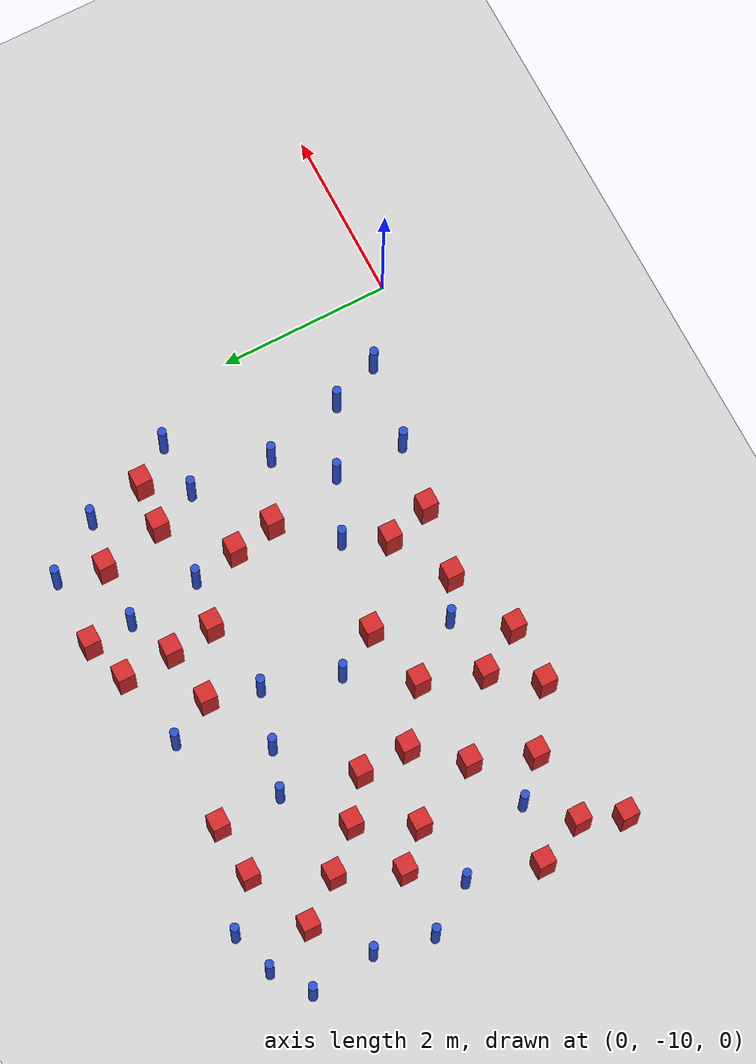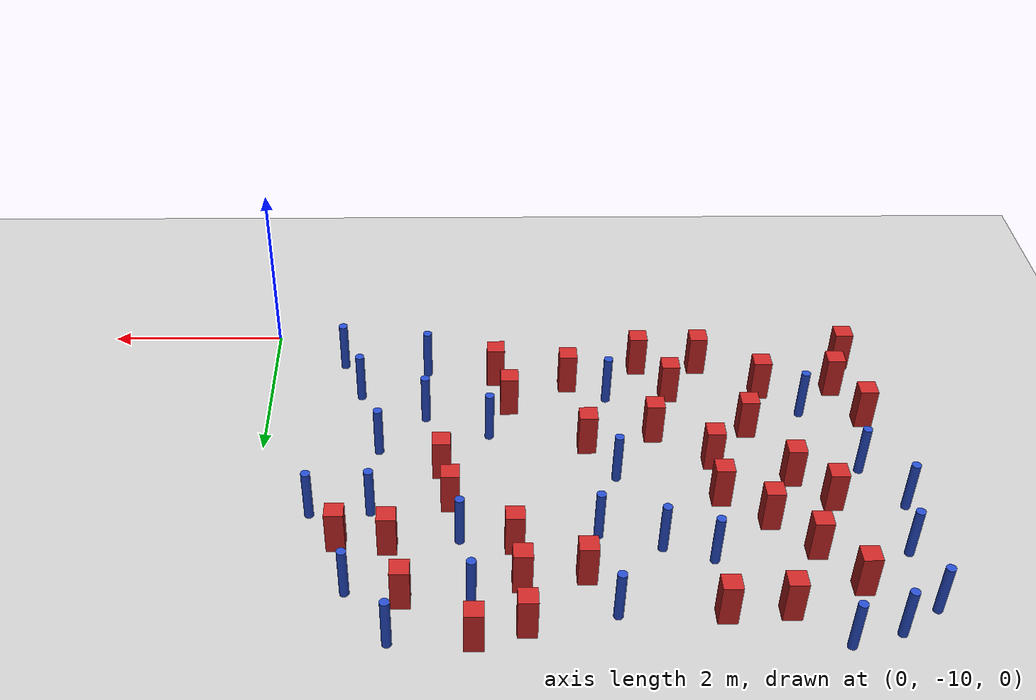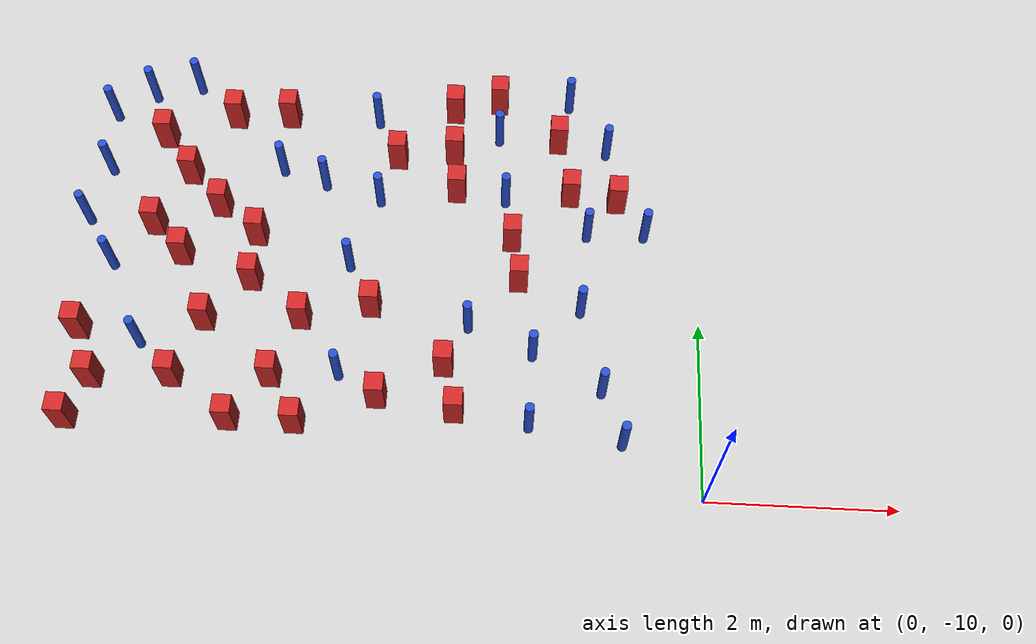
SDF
<sdf version="1.6">
 <world name="default">
  <model name="ground_plane">
   <static>1</static>
   <link name="link">
    <collision name="collision">
     <geometry><plane><normal>0 0 1</normal><size>100 100</size></plane></geometry>
     <surface><friction><ode><mu>100</mu><mu2>50</mu2></ode></friction></surface>
    </collision>
    <visual name="visual">
     <cast_shadows>0</cast_shadows>
     <geometry><plane><normal>0 0 1</normal><size>100 100</size></plane></geometry>
     <material>
      <ambient>1.0 1.0 1.0 1.0</ambient>
      <diffuse>0.8 0.8 0.8 1.0</diffuse>
      <specular>0.01 0.01 0.01 1.000000</specular>
     </material>
    </visual>
   </link>
  </model>
  <model name="pole_obstacle16">
   <static>true</static>
   <pose>-6.89624991938 -7.01245706391 2.88873142074e-08 -9.90536690842e-09 4.60219948965e-07 -1.20965994976e-07</pose>
   <link name="link">
    <pose>0 0 0.3 0 -0 0</pose>
    <inertial>
     <mass>1</mass>
     <inertia><ixx>0.145833</ixx><ixy>0</ixy><ixz>0</ixz><iyy>0.145833</iyy><iyz>0</iyz><izz>0.125</izz></inertia>
    </inertial>
    <collision name="collision">
     <geometry><cylinder><radius>0.05</radius><length>.6</length></cylinder></geometry>
    </collision>
    <visual name="visual">
     <geometry><cylinder><radius>0.05</radius><length>.6</length></cylinder></geometry>
     <material>
      <script><name>Gazebo/Blue</name><uri>file://media/materials/scripts/gazebo.material</uri></script>
     </material>
    </visual>
   </link>
  </model>
  <model name="square_post_obstacle25">
   <static>true</static>
   <pose>-5.38854171255 -8.22522433541 8.22691968438e-08 7.2212513382e-06 -7.54495500217e-07 2.29674213826e-05</pose>
   <link name="link">
    <pose>0 0 0.25 0 -0 0</pose>
    <inertial>
     <mass>100</mass>
     <inertia>
      <ixx>0.166667</ixx>
      <ixy>0</ixy>
      <ixz>0</ixz>
      <iyy>0.166667</iyy>
      <iyz>0</iyz>
      <izz>0.166667</izz>
     </inertia>
    </inertial>
    <collision name="collision"><geometry><box><size>.2 .2 .5</size></box></geometry></collision>
    <visual name="visual">
     <geometry><box><size>.2 .2 .5</size></box></geometry>
     <material>
      <script><name>Gazebo/Red</name><uri>file://media/materials/scripts/gazebo.material</uri></script>
     </material>
    </visual>
   </link>
  </model>
  <model name="square_post_obstacle26">
   <static>true</static>
   <pose>-2.73915093022 -6.44929739623 8.22691968438e-08 7.2212513382e-06 -7.54495500217e-07 2.29674213826e-05</pose>
   <link name="link">
    <pose>0 0 0.25 0 -0 0</pose>
    <inertial>
     <mass>100</mass>
     <inertia>
      <ixx>0.166667</ixx>
      <ixy>0</ixy>
      <ixz>0</ixz>
      <iyy>0.166667</iyy>
      <iyz>0</iyz>
      <izz>0.166667</izz>
     </inertia>
    </inertial>
    <collision name="collision"><geometry><box><size>.2 .2 .5</size></box></geometry></collision>
    <visual name="visual">
     <geometry><box><size>.2 .2 .5</size></box></geometry>
     <material>
      <script><name>Gazebo/Red</name><uri>file://media/materials/scripts/gazebo.material</uri></script>
     </material>
    </visual>
   </link>
  </model>
  <model name="square_post_obstacle30">
   <static>true</static>
   <pose>-5.81576217852 -6.35316441127 8.22691968438e-08 7.2212513382e-06 -7.54495500217e-07 2.29674213826e-05</pose>
   <link name="link">
    <pose>0 0 0.25 0 -0 0</pose>
    <inertial>
     <mass>100</mass>
     <inertia>
      <ixx>0.166667</ixx>
      <ixy>0</ixy>
      <ixz>0</ixz>
      <iyy>0.166667</iyy>
      <iyz>0</iyz>
      <izz>0.166667</izz>
     </inertia>
    </inertial>
    <collision name="collision"><geometry><box><size>.2 .2 .5</size></box></geometry></collision>
    <visual name="visual">
     <geometry><box><size>.2 .2 .5</size></box></geometry>
     <material>
      <script><name>Gazebo/Red</name><uri>file://media/materials/scripts/gazebo.material</uri></script>
     </material>
    </visual>
   </link>
  </model>
  <model name="pole_obstacle26">
   <static>true</static>
   <pose>-1.29544428824 -7.91974382998 2.88873142074e-08 -9.90536689852e-09 4.60219948989e-07 -1.2096599496e-07</pose>
   <link name="link">
    <pose>0 0 0.3 0 -0 0</pose>
    <inertial>
     <mass>1</mass>
     <inertia><ixx>0.145833</ixx><ixy>0</ixy><ixz>0</ixz><iyy>0.145833</iyy><iyz>0</iyz><izz>0.125</izz></inertia>
    </inertial>
    <collision name="collision">
     <geometry><cylinder><radius>0.05</radius><length>.6</length></cylinder></geometry>
    </collision>
    <visual name="visual">
     <geometry><cylinder><radius>0.05</radius><length>.6</length></cylinder></geometry>
     <material>
      <script><name>Gazebo/Blue</name><uri>file://media/materials/scripts/gazebo.material</uri></script>
     </material>
    </visual>
   </link>
  </model>
  <model name="pole_obstacle27">
   <static>true</static>
   <pose>-1.24151862394 -6.95522540877 2.88873142074e-08 -9.90536689852e-09 4.60219948989e-07 -1.2096599496e-07</pose>
   <link name="link">
    <pose>0 0 0.3 0 -0 0</pose>
    <inertial>
     <mass>1</mass>
     <inertia><ixx>0.145833</ixx><ixy>0</ixy><ixz>0</ixz><iyy>0.145833</iyy><iyz>0</iyz><izz>0.125</izz></inertia>
    </inertial>
    <collision name="collision">
     <geometry><cylinder><radius>0.05</radius><length>.6</length></cylinder></geometry>
    </collision>
    <visual name="visual">
     <geometry><cylinder><radius>0.05</radius><length>.6</length></cylinder></geometry>
     <material>
      <script><name>Gazebo/Blue</name><uri>file://media/materials/scripts/gazebo.material</uri></script>
     </material>
    </visual>
   </link>
  </model>
  <model name="pole_obstacle35">
   <static>true</static>
   <pose>-5.91298071037 -5.12505855681 2.88873142074e-08 -9.90536690842e-09 4.60219948965e-07 -1.20965994976e-07</pose>
   <link name="link">
    <pose>0 0 0.3 0 -0 0</pose>
    <inertial>
     <mass>1</mass>
     <inertia><ixx>0.145833</ixx><ixy>0</ixy><ixz>0</ixz><iyy>0.145833</iyy><iyz>0</iyz><izz>0.125</izz></inertia>
    </inertial>
    <collision name="collision">
     <geometry><cylinder><radius>0.05</radius><length>.6</length></cylinder></geometry>
    </collision>
    <visual name="visual">
     <geometry><cylinder><radius>0.05</radius><length>.6</length></cylinder></geometry>
     <material>
      <script><name>Gazebo/Blue</name><uri>file://media/materials/scripts/gazebo.material</uri></script>
     </material>
    </visual>
   </link>
  </model>
  <model name="pole_obstacle36">
   <static>true</static>
   <pose>-3.87047037281 -8.80147134352 2.88873142074e-08 -9.9053668994e-09 4.60219948987e-07 -1.20965994963e-07</pose>
   <link name="link">
    <pose>0 0 0.3 0 -0 0</pose>
    <inertial>
     <mass>1</mass>
     <inertia><ixx>0.145833</ixx><ixy>0</ixy><ixz>0</ixz><iyy>0.145833</iyy><iyz>0</iyz><izz>0.125</izz></inertia>
    </inertial>
    <collision name="collision">
     <geometry><cylinder><radius>0.05</radius><length>.6</length></cylinder></geometry>
    </collision>
    <visual name="visual">
     <geometry><cylinder><radius>0.05</radius><length>.6</length></cylinder></geometry>
     <material>
      <script><name>Gazebo/Blue</name><uri>file://media/materials/scripts/gazebo.material</uri></script>
     </material>
    </visual>
   </link>
  </model>
  <model name="pole_obstacle39">
   <static>true</static>
   <pose>-6.43101364666 -5.27138680431 2.88873142074e-08 -9.90536690842e-09 4.60219948965e-07 -1.20965994976e-07</pose>
   <link name="link">
    <pose>0 0 0.3 0 -0 0</pose>
    <inertial>
     <mass>1</mass>
     <inertia><ixx>0.145833</ixx><ixy>0</ixy><ixz>0</ixz><iyy>0.145833</iyy><iyz>0</iyz><izz>0.125</izz></inertia>
    </inertial>
    <collision name="collision">
     <geometry><cylinder><radius>0.05</radius><length>.6</length></cylinder></geometry>
    </collision>
    <visual name="visual">
     <geometry><cylinder><radius>0.05</radius><length>.6</length></cylinder></geometry>
     <material>
      <script><name>Gazebo/Blue</name><uri>file://media/materials/scripts/gazebo.material</uri></script>
     </material>
    </visual>
   </link>
  </model>
  <model name="pole_obstacle42">
   <static>true</static>
   <pose>-1.81489456536 -9.29456355967 2.88873142074e-08 -9.90536690474e-09 4.60219948974e-07 -1.2096599497e-07</pose>
   <link name="link">
    <pose>0 0 0.3 0 -0 0</pose>
    <inertial>
     <mass>1</mass>
     <inertia><ixx>0.145833</ixx><ixy>0</ixy><ixz>0</ixz><iyy>0.145833</iyy><iyz>0</iyz><izz>0.125</izz></inertia>
    </inertial>
    <collision name="collision">
     <geometry><cylinder><radius>0.05</radius><length>.6</length></cylinder></geometry>
    </collision>
    <visual name="visual">
     <geometry><cylinder><radius>0.05</radius><length>.6</length></cylinder></geometry>
     <material>
      <script><name>Gazebo/Blue</name><uri>file://media/materials/scripts/gazebo.material</uri></script>
     </material>
    </visual>
   </link>
  </model>
  <model name="pole_obstacle43">
   <static>true</static>
   <pose>-3.71937577487 -5.51501637689 2.88873142074e-08 -9.90536689859e-09 4.60219948989e-07 -1.20965994961e-07</pose>
   <link name="link">
    <pose>0 0 0.3 0 -0 0</pose>
    <inertial>
     <mass>1</mass>
     <inertia><ixx>0.145833</ixx><ixy>0</ixy><ixz>0</ixz><iyy>0.145833</iyy><iyz>0</iyz><izz>0.125</izz></inertia>
    </inertial>
    <collision name="collision">
     <geometry><cylinder><radius>0.05</radius><length>.6</length></cylinder></geometry>
    </collision>
    <visual name="visual">
     <geometry><cylinder><radius>0.05</radius><length>.6</length></cylinder></geometry>
     <material>
      <script><name>Gazebo/Blue</name><uri>file://media/materials/scripts/gazebo.material</uri></script>
     </material>
    </visual>
   </link>
  </model>
  <model name="square_post_obstacle43">
   <static>true</static>
   <pose>-2.82227406231 -5.33965310086 8.22691968438e-08 7.2212513382e-06 -7.54495500217e-07 2.29674213826e-05</pose>
   <link name="link">
    <pose>0 0 0.25 0 -0 0</pose>
    <inertial>
     <mass>100</mass>
     <inertia>
      <ixx>0.166667</ixx>
      <ixy>0</ixy>
      <ixz>0</ixz>
      <iyy>0.166667</iyy>
      <iyz>0</iyz>
      <izz>0.166667</izz>
     </inertia>
    </inertial>
    <collision name="collision"><geometry><box><size>.2 .2 .5</size></box></geometry></collision>
    <visual name="visual">
     <geometry><box><size>.2 .2 .5</size></box></geometry>
     <material>
      <script><name>Gazebo/Red</name><uri>file://media/materials/scripts/gazebo.material</uri></script>
     </material>
    </visual>
   </link>
  </model>
  <model name="square_post_obstacle45">
   <static>true</static>
   <pose>-5.75638788323 -7.42453870226 8.22691968438e-08 7.22125133819e-06 -7.54495500217e-07 2.29674213826e-05</pose>
   <link name="link">
    <pose>0 0 0.25 0 -0 0</pose>
    <inertial>
     <mass>100</mass>
     <inertia>
      <ixx>0.166667</ixx>
      <ixy>0</ixy>
      <ixz>0</ixz>
      <iyy>0.166667</iyy>
      <iyz>0</iyz>
      <izz>0.166667</izz>
     </inertia>
    </inertial>
    <collision name="collision"><geometry><box><size>.2 .2 .5</size></box></geometry></collision>
    <visual name="visual">
     <geometry><box><size>.2 .2 .5</size></box></geometry>
     <material>
      <script><name>Gazebo/Red</name><uri>file://media/materials/scripts/gazebo.material</uri></script>
     </material>
    </visual>
   </link>
  </model>
  <model name="pole_obstacle48">
   <static>true</static>
   <pose>-3.61156983142 -6.60549499672 2.88873142074e-08 -9.90536689859e-09 4.60219948989e-07 -1.20965994961e-07</pose>
   <link name="link">
    <pose>0 0 0.3 0 -0 0</pose>
    <inertial>
     <mass>1</mass>
     <inertia><ixx>0.145833</ixx><ixy>0</ixy><ixz>0</ixz><iyy>0.145833</iyy><iyz>0</iyz><izz>0.125</izz></inertia>
    </inertial>
    <collision name="collision">
     <geometry><cylinder><radius>0.05</radius><length>.6</length></cylinder></geometry>
    </collision>
    <visual name="visual">
     <geometry><cylinder><radius>0.05</radius><length>.6</length></cylinder></geometry>
     <material>
      <script><name>Gazebo/Blue</name><uri>file://media/materials/scripts/gazebo.material</uri></script>
     </material>
    </visual>
   </link>
  </model>
  <model name="pole_obstacle50">
   <static>true</static>
   <pose>-6.52406111084 -7.57652183236 2.88873142074e-08 -9.90536690842e-09 4.60219948965e-07 -1.20965994976e-07</pose>
   <link name="link">
    <pose>0 0 0.3 0 -0 0</pose>
    <inertial>
     <mass>1</mass>
     <inertia><ixx>0.145833</ixx><ixy>0</ixy><ixz>0</ixz><iyy>0.145833</iyy><iyz>0</iyz><izz>0.125</izz></inertia>
    </inertial>
    <collision name="collision">
     <geometry><cylinder><radius>0.05</radius><length>.6</length></cylinder></geometry>
    </collision>
    <visual name="visual">
     <geometry><cylinder><radius>0.05</radius><length>.6</length></cylinder></geometry>
     <material>
      <script><name>Gazebo/Blue</name><uri>file://media/materials/scripts/gazebo.material</uri></script>
     </material>
    </visual>
   </link>
  </model>
  <model name="square_post_obstacle52">
   <static>true</static>
   <pose>-4.76873628464 -5.50413913749 8.22691968438e-08 7.22125133819e-06 -7.54495500217e-07 2.29674213826e-05</pose>
   <link name="link">
    <pose>0 0 0.25 0 -0 0</pose>
    <inertial>
     <mass>100</mass>
     <inertia>
      <ixx>0.166667</ixx>
      <ixy>0</ixy>
      <ixz>0</ixz>
      <iyy>0.166667</iyy>
      <iyz>0</iyz>
      <izz>0.166667</izz>
     </inertia>
    </inertial>
    <collision name="collision"><geometry><box><size>.2 .2 .5</size></box></geometry></collision>
    <visual name="visual">
     <geometry><box><size>.2 .2 .5</size></box></geometry>
     <material>
      <script><name>Gazebo/Red</name><uri>file://media/materials/scripts/gazebo.material</uri></script>
     </material>
    </visual>
   </link>
  </model>
  <model name="square_post_obstacle54">
   <static>true</static>
   <pose>-2.30677509787 -5.1812894545 8.22691968438e-08 7.2212513382e-06 -7.54495500217e-07 2.29674213826e-05</pose>
   <link name="link">
    <pose>0 0 0.25 0 -0 0</pose>
    <inertial>
     <mass>100</mass>
     <inertia>
      <ixx>0.166667</ixx>
      <ixy>0</ixy>
      <ixz>0</ixz>
      <iyy>0.166667</iyy>
      <iyz>0</iyz>
      <izz>0.166667</izz>
     </inertia>
    </inertial>
    <collision name="collision"><geometry><box><size>.2 .2 .5</size></box></geometry></collision>
    <visual name="visual">
     <geometry><box><size>.2 .2 .5</size></box></geometry>
     <material>
      <script><name>Gazebo/Red</name><uri>file://media/materials/scripts/gazebo.material</uri></script>
     </material>
    </visual>
   </link>
  </model>
  <model name="pole_obstacle61">
   <static>true</static>
   <pose>-6.76347307878 -6.33393074547 2.88873142074e-08 -9.90536690842e-09 4.60219948965e-07 -1.20965994976e-07</pose>
   <link name="link">
    <pose>0 0 0.3 0 -0 0</pose>
    <inertial>
     <mass>1</mass>
     <inertia><ixx>0.145833</ixx><ixy>0</ixy><ixz>0</ixz><iyy>0.145833</iyy><iyz>0</iyz><izz>0.125</izz></inertia>
    </inertial>
    <collision name="collision">
     <geometry><cylinder><radius>0.05</radius><length>.6</length></cylinder></geometry>
    </collision>
    <visual name="visual">
     <geometry><cylinder><radius>0.05</radius><length>.6</length></cylinder></geometry>
     <material>
      <script><name>Gazebo/Blue</name><uri>file://media/materials/scripts/gazebo.material</uri></script>
     </material>
    </visual>
   </link>
  </model>
  <model name="square_post_obstacle68">
   <static>true</static>
   <pose>-0.911592674147 -6.50263978861 8.22691968438e-08 7.22125133819e-06 -7.54495500217e-07 2.29674213826e-05</pose>
   <link name="link">
    <pose>0 0 0.25 0 -0 0</pose>
    <inertial>
     <mass>100</mass>
     <inertia>
      <ixx>0.166667</ixx>
      <ixy>0</ixy>
      <ixz>0</ixz>
      <iyy>0.166667</iyy>
      <iyz>0</iyz>
      <izz>0.166667</izz>
     </inertia>
    </inertial>
    <collision name="collision"><geometry><box><size>.2 .2 .5</size></box></geometry></collision>
    <visual name="visual">
     <geometry><box><size>.2 .2 .5</size></box></geometry>
     <material>
      <script><name>Gazebo/Red</name><uri>file://media/materials/scripts/gazebo.material</uri></script>
     </material>
    </visual>
   </link>
  </model>
  <model name="pole_obstacle66">
   <static>true</static>
   <pose>-6.05613286096 -8.52652682393 2.88873142074e-08 -9.9053668967e-09 4.60219948993e-07 -1.20965994957e-07</pose>
   <link name="link">
    <pose>0 0 0.3 0 -0 0</pose>
    <inertial>
     <mass>1</mass>
     <inertia><ixx>0.145833</ixx><ixy>0</ixy><ixz>0</ixz><iyy>0.145833</iyy><iyz>0</iyz><izz>0.125</izz></inertia>
    </inertial>
    <collision name="collision">
     <geometry><cylinder><radius>0.05</radius><length>.6</length></cylinder></geometry>
    </collision>
    <visual name="visual">
     <geometry><cylinder><radius>0.05</radius><length>.6</length></cylinder></geometry>
     <material>
      <script><name>Gazebo/Blue</name><uri>file://media/materials/scripts/gazebo.material</uri></script>
     </material>
    </visual>
   </link>
  </model>
  <model name="square_post_obstacle73">
   <static>true</static>
   <pose>-4.34005270872 -8.15746044014 8.22691968438e-08 7.22125133819e-06 -7.54495500217e-07 2.29674213826e-05</pose>
   <link name="link">
    <pose>0 0 0.25 0 -0 0</pose>
    <inertial>
     <mass>100</mass>
     <inertia>
      <ixx>0.166667</ixx>
      <ixy>0</ixy>
      <ixz>0</ixz>
      <iyy>0.166667</iyy>
      <iyz>0</iyz>
      <izz>0.166667</izz>
     </inertia>
    </inertial>
    <collision name="collision"><geometry><box><size>.2 .2 .5</size></box></geometry></collision>
    <visual name="visual">
     <geometry><box><size>.2 .2 .5</size></box></geometry>
     <material>
      <script><name>Gazebo/Red</name><uri>file://media/materials/scripts/gazebo.material</uri></script>
     </material>
    </visual>
   </link>
  </model>
  <model name="pole_obstacle72">
   <static>true</static>
   <pose>-1.05344564588 -8.86628568529 2.88873142074e-08 -9.90536690474e-09 4.60219948974e-07 -1.2096599497e-07</pose>
   <link name="link">
    <pose>0 0 0.3 0 -0 0</pose>
    <inertial>
     <mass>1</mass>
     <inertia><ixx>0.145833</ixx><ixy>0</ixy><ixz>0</ixz><iyy>0.145833</iyy><iyz>0</iyz><izz>0.125</izz></inertia>
    </inertial>
    <collision name="collision">
     <geometry><cylinder><radius>0.05</radius><length>.6</length></cylinder></geometry>
    </collision>
    <visual name="visual">
     <geometry><cylinder><radius>0.05</radius><length>.6</length></cylinder></geometry>
     <material>
      <script><name>Gazebo/Blue</name><uri>file://media/materials/scripts/gazebo.material</uri></script>
     </material>
    </visual>
   </link>
  </model>
  <model name="pole_obstacle78">
   <static>true</static>
   <pose>-0.597152201284 -6.93137915934 2.88873142074e-08 -9.90536689661e-09 4.60219948993e-07 -1.20965994957e-07</pose>
   <link name="link">
    <pose>0 0 0.3 0 -0 0</pose>
    <inertial>
     <mass>1</mass>
     <inertia><ixx>0.145833</ixx><ixy>0</ixy><ixz>0</ixz><iyy>0.145833</iyy><iyz>0</iyz><izz>0.125</izz></inertia>
    </inertial>
    <collision name="collision">
     <geometry><cylinder><radius>0.05</radius><length>.6</length></cylinder></geometry>
    </collision>
    <visual name="visual">
     <geometry><cylinder><radius>0.05</radius><length>.6</length></cylinder></geometry>
     <material>
      <script><name>Gazebo/Blue</name><uri>file://media/materials/scripts/gazebo.material</uri></script>
     </material>
    </visual>
   </link>
  </model>
  <model name="pole_obstacle88">
   <static>true</static>
   <pose>-6.84931770645 -5.56929413745 2.88873142074e-08 -9.90536690842e-09 4.60219948965e-07 -1.20965994976e-07</pose>
   <link name="link">
    <pose>0 0 0.3 0 -0 0</pose>
    <inertial>
     <mass>1</mass>
     <inertia><ixx>0.145833</ixx><ixy>0</ixy><ixz>0</ixz><iyy>0.145833</iyy><iyz>0</iyz><izz>0.125</izz></inertia>
    </inertial>
    <collision name="collision">
     <geometry><cylinder><radius>0.05</radius><length>.6</length></cylinder></geometry>
    </collision>
    <visual name="visual">
     <geometry><cylinder><radius>0.05</radius><length>.6</length></cylinder></geometry>
     <material>
      <script><name>Gazebo/Blue</name><uri>file://media/materials/scripts/gazebo.material</uri></script>
     </material>
    </visual>
   </link>
  </model>
  <model name="pole_obstacle100">
   <static>true</static>
   <pose>-1.03474530846 -5.82933490669 2.88873142074e-08 -9.90536689792e-09 4.6021994899e-07 -1.2096599496e-07</pose>
   <link name="link">
    <pose>0 0 0.3 0 -0 0</pose>
    <inertial>
     <mass>1</mass>
     <inertia><ixx>0.145833</ixx><ixy>0</ixy><ixz>0</ixz><iyy>0.145833</iyy><iyz>0</iyz><izz>0.125</izz></inertia>
    </inertial>
    <collision name="collision">
     <geometry><cylinder><radius>0.05</radius><length>.6</length></cylinder></geometry>
    </collision>
    <visual name="visual">
     <geometry><cylinder><radius>0.05</radius><length>.6</length></cylinder></geometry>
     <material>
      <script><name>Gazebo/Blue</name><uri>file://media/materials/scripts/gazebo.material</uri></script>
     </material>
    </visual>
   </link>
  </model>
  <model name="square_post_obstacle89">
   <static>true</static>
   <pose>-4.97266910387 -9.37228262145 8.22691968438e-08 7.22125133819e-06 -7.54495500217e-07 2.29674213826e-05</pose>
   <link name="link">
    <pose>0 0 0.25 0 -0 0</pose>
    <inertial>
     <mass>100</mass>
     <inertia>
      <ixx>0.166667</ixx>
      <ixy>0</ixy>
      <ixz>0</ixz>
      <iyy>0.166667</iyy>
      <iyz>0</iyz>
      <izz>0.166667</izz>
     </inertia>
    </inertial>
    <collision name="collision"><geometry><box><size>.2 .2 .5</size></box></geometry></collision>
    <visual name="visual">
     <geometry><box><size>.2 .2 .5</size></box></geometry>
     <material>
      <script><name>Gazebo/Red</name><uri>file://media/materials/scripts/gazebo.material</uri></script>
     </material>
    </visual>
   </link>
  </model>
  <model name="square_post_obstacle93">
   <static>true</static>
   <pose>-2.60583437431 -9.16882725097 8.22691968438e-08 7.22125133819e-06 -7.54495500217e-07 2.29674213826e-05</pose>
   <link name="link">
    <pose>0 0 0.25 0 -0 0</pose>
    <inertial>
     <mass>100</mass>
     <inertia>
      <ixx>0.166667</ixx>
      <ixy>0</ixy>
      <ixz>0</ixz>
      <iyy>0.166667</iyy>
      <iyz>0</iyz>
      <izz>0.166667</izz>
     </inertia>
    </inertial>
    <collision name="collision"><geometry><box><size>.2 .2 .5</size></box></geometry></collision>
    <visual name="visual">
     <geometry><box><size>.2 .2 .5</size></box></geometry>
     <material>
      <script><name>Gazebo/Red</name><uri>file://media/materials/scripts/gazebo.material</uri></script>
     </material>
    </visual>
   </link>
  </model>
  <model name="square_post_obstacle95">
   <static>true</static>
   <pose>-3.44843701684 -6.02226615077 8.22691968438e-08 7.22125133819e-06 -7.54495500217e-07 2.29674213826e-05</pose>
   <link name="link">
    <pose>0 0 0.25 0 -0 0</pose>
    <inertial>
     <mass>100</mass>
     <inertia>
      <ixx>0.166667</ixx>
      <ixy>0</ixy>
      <ixz>0</ixz>
      <iyy>0.166667</iyy>
      <iyz>0</iyz>
      <izz>0.166667</izz>
     </inertia>
    </inertial>
    <collision name="collision"><geometry><box><size>.2 .2 .5</size></box></geometry></collision>
    <visual name="visual">
     <geometry><box><size>.2 .2 .5</size></box></geometry>
     <material>
      <script><name>Gazebo/Red</name><uri>file://media/materials/scripts/gazebo.material</uri></script>
     </material>
    </visual>
   </link>
  </model>
  <model name="square_post_obstacle98">
   <static>true</static>
   <pose>-4.58661355288 -8.85754499312 8.22691968438e-08 7.22125133819e-06 -7.54495500217e-07 2.29674213826e-05</pose>
   <link name="link">
    <pose>0 0 0.25 0 -0 0</pose>
    <inertial>
     <mass>100</mass>
     <inertia>
      <ixx>0.166667</ixx>
      <ixy>0</ixy>
      <ixz>0</ixz>
      <iyy>0.166667</iyy>
      <iyz>0</iyz>
      <izz>0.166667</izz>
     </inertia>
    </inertial>
    <collision name="collision"><geometry><box><size>.2 .2 .5</size></box></geometry></collision>
    <visual name="visual">
     <geometry><box><size>.2 .2 .5</size></box></geometry>
     <material>
      <script><name>Gazebo/Red</name><uri>file://media/materials/scripts/gazebo.material</uri></script>
     </material>
    </visual>
   </link>
  </model>
  <model name="pole_obstacle110">
   <static>true</static>
   <pose>-1.47766390141 -5.18041618831 2.88873142074e-08 -9.90536689852e-09 4.60219948989e-07 -1.2096599496e-07</pose>
   <link name="link">
    <pose>0 0 0.3 0 -0 0</pose>
    <inertial>
     <mass>1</mass>
     <inertia><ixx>0.145833</ixx><ixy>0</ixy><ixz>0</ixz><iyy>0.145833</iyy><iyz>0</iyz><izz>0.125</izz></inertia>
    </inertial>
    <collision name="collision">
     <geometry><cylinder><radius>0.05</radius><length>.6</length></cylinder></geometry>
    </collision>
    <visual name="visual">
     <geometry><cylinder><radius>0.05</radius><length>.6</length></cylinder></geometry>
     <material>
      <script><name>Gazebo/Blue</name><uri>file://media/materials/scripts/gazebo.material</uri></script>
     </material>
    </visual>
   </link>
  </model>
  <model name="square_post_obstacle101">
   <static>true</static>
   <pose>-6.12352943262 -7.05329330474 8.22691968438e-08 7.2212513382e-06 -7.54495500217e-07 2.29674213826e-05</pose>
   <link name="link">
    <pose>0 0 0.25 0 -0 0</pose>
    <inertial>
     <mass>100</mass>
     <inertia>
      <ixx>0.166667</ixx>
      <ixy>0</ixy>
      <ixz>0</ixz>
      <iyy>0.166667</iyy>
      <iyz>0</iyz>
      <izz>0.166667</izz>
     </inertia>
    </inertial>
    <collision name="collision"><geometry><box><size>.2 .2 .5</size></box></geometry></collision>
    <visual name="visual">
     <geometry><box><size>.2 .2 .5</size></box></geometry>
     <material>
      <script><name>Gazebo/Red</name><uri>file://media/materials/scripts/gazebo.material</uri></script>
     </material>
    </visual>
   </link>
  </model>
  <model name="pole_obstacle117">
   <static>true</static>
   <pose>-2.17874669669 -6.54104495442 2.88873142074e-08 -9.90536689859e-09 4.60219948989e-07 -1.20965994961e-07</pose>
   <link name="link">
    <pose>0 0 0.3 0 -0 0</pose>
    <inertial>
     <mass>1</mass>
     <inertia><ixx>0.145833</ixx><ixy>0</ixy><ixz>0</ixz><iyy>0.145833</iyy><iyz>0</iyz><izz>0.125</izz></inertia>
    </inertial>
    <collision name="collision">
     <geometry><cylinder><radius>0.05</radius><length>.6</length></cylinder></geometry>
    </collision>
    <visual name="visual">
     <geometry><cylinder><radius>0.05</radius><length>.6</length></cylinder></geometry>
     <material>
      <script><name>Gazebo/Blue</name><uri>file://media/materials/scripts/gazebo.material</uri></script>
     </material>
    </visual>
   </link>
  </model>
  <model name="square_post_obstacle104">
   <static>true</static>
   <pose>-3.58839003748 -7.97431016761 8.22691968438e-08 7.2212513382e-06 -7.54495500217e-07 2.29674213826e-05</pose>
   <link name="link">
    <pose>0 0 0.25 0 -0 0</pose>
    <inertial>
     <mass>100</mass>
     <inertia>
      <ixx>0.166667</ixx>
      <ixy>0</ixy>
      <ixz>0</ixz>
      <iyy>0.166667</iyy>
      <iyz>0</iyz>
      <izz>0.166667</izz>
     </inertia>
    </inertial>
    <collision name="collision"><geometry><box><size>.2 .2 .5</size></box></geometry></collision>
    <visual name="visual">
     <geometry><box><size>.2 .2 .5</size></box></geometry>
     <material>
      <script><name>Gazebo/Red</name><uri>file://media/materials/scripts/gazebo.material</uri></script>
     </material>
    </visual>
   </link>
  </model>
  <model name="pole_obstacle128">
   <static>true</static>
   <pose>-4.76695716701 -6.24679037391 2.88873142074e-08 -9.90536690842e-09 4.60219948965e-07 -1.20965994976e-07</pose>
   <link name="link">
    <pose>0 0 0.3 0 -0 0</pose>
    <inertial>
     <mass>1</mass>
     <inertia><ixx>0.145833</ixx><ixy>0</ixy><ixz>0</ixz><iyy>0.145833</iyy><iyz>0</iyz><izz>0.125</izz></inertia>
    </inertial>
    <collision name="collision">
     <geometry><cylinder><radius>0.05</radius><length>.6</length></cylinder></geometry>
    </collision>
    <visual name="visual">
     <geometry><cylinder><radius>0.05</radius><length>.6</length></cylinder></geometry>
     <material>
      <script><name>Gazebo/Blue</name><uri>file://media/materials/scripts/gazebo.material</uri></script>
     </material>
    </visual>
   </link>
  </model>
  <model name="pole_obstacle133">
   <static>true</static>
   <pose>-0.831274714553 -9.44400427229 2.88873142074e-08 -9.90536690779e-09 4.60219948967e-07 -1.20965994975e-07</pose>
   <link name="link">
    <pose>0 0 0.3 0 -0 0</pose>
    <inertial>
     <mass>1</mass>
     <inertia><ixx>0.145833</ixx><ixy>0</ixy><ixz>0</ixz><iyy>0.145833</iyy><iyz>0</iyz><izz>0.125</izz></inertia>
    </inertial>
    <collision name="collision">
     <geometry><cylinder><radius>0.05</radius><length>.6</length></cylinder></geometry>
    </collision>
    <visual name="visual">
     <geometry><cylinder><radius>0.05</radius><length>.6</length></cylinder></geometry>
     <material>
      <script><name>Gazebo/Blue</name><uri>file://media/materials/scripts/gazebo.material</uri></script>
     </material>
    </visual>
   </link>
  </model>
  <model name="square_post_obstacle123">
   <static>true</static>
   <pose>-2.08216667692 -7.06753956158 8.22691968438e-08 7.22125133819e-06 -7.54495500217e-07 2.29674213826e-05</pose>
   <link name="link">
    <pose>0 0 0.25 0 -0 0</pose>
    <inertial>
     <mass>100</mass>
     <inertia>
      <ixx>0.166667</ixx>
      <ixy>0</ixy>
      <ixz>0</ixz>
      <iyy>0.166667</iyy>
      <iyz>0</iyz>
      <izz>0.166667</izz>
     </inertia>
    </inertial>
    <collision name="collision"><geometry><box><size>.2 .2 .5</size></box></geometry></collision>
    <visual name="visual">
     <geometry><box><size>.2 .2 .5</size></box></geometry>
     <material>
      <script><name>Gazebo/Red</name><uri>file://media/materials/scripts/gazebo.material</uri></script>
     </material>
    </visual>
   </link>
  </model>
  <model name="square_post_obstacle137">
   <static>true</static>
   <pose>-5.40934075453 -6.77829700401 8.22691968438e-08 7.2212513382e-06 -7.54495500217e-07 2.29674213826e-05</pose>
   <link name="link">
    <pose>0 0 0.25 0 -0 0</pose>
    <inertial>
     <mass>100</mass>
     <inertia>
      <ixx>0.166667</ixx>
      <ixy>0</ixy>
      <ixz>0</ixz>
      <iyy>0.166667</iyy>
      <iyz>0</iyz>
      <izz>0.166667</izz>
     </inertia>
    </inertial>
    <collision name="collision"><geometry><box><size>.2 .2 .5</size></box></geometry></collision>
    <visual name="visual">
     <geometry><box><size>.2 .2 .5</size></box></geometry>
     <material>
      <script><name>Gazebo/Red</name><uri>file://media/materials/scripts/gazebo.material</uri></script>
     </material>
    </visual>
   </link>
  </model>
  <model name="pole_obstacle150">
   <static>true</static>
   <pose>-1.80358921855 -8.47105041291 2.88873142074e-08 -9.90536690474e-09 4.60219948974e-07 -1.2096599497e-07</pose>
   <link name="link">
    <pose>0 0 0.3 0 -0 0</pose>
    <inertial>
     <mass>1</mass>
     <inertia><ixx>0.145833</ixx><ixy>0</ixy><ixz>0</ixz><iyy>0.145833</iyy><iyz>0</iyz><izz>0.125</izz></inertia>
    </inertial>
    <collision name="collision">
     <geometry><cylinder><radius>0.05</radius><length>.6</length></cylinder></geometry>
    </collision>
    <visual name="visual">
     <geometry><cylinder><radius>0.05</radius><length>.6</length></cylinder></geometry>
     <material>
      <script><name>Gazebo/Blue</name><uri>file://media/materials/scripts/gazebo.material</uri></script>
     </material>
    </visual>
   </link>
  </model>
  <model name="pole_obstacle153">
   <static>true</static>
   <pose>-4.2569739503 -6.41872614695 2.88873142074e-08 -9.90536690842e-09 4.60219948965e-07 -1.20965994976e-07</pose>
   <link name="link">
    <pose>0 0 0.3 0 -0 0</pose>
    <inertial>
     <mass>1</mass>
     <inertia><ixx>0.145833</ixx><ixy>0</ixy><ixz>0</ixz><iyy>0.145833</iyy><iyz>0</iyz><izz>0.125</izz></inertia>
    </inertial>
    <collision name="collision">
     <geometry><cylinder><radius>0.05</radius><length>.6</length></cylinder></geometry>
    </collision>
    <visual name="visual">
     <geometry><cylinder><radius>0.05</radius><length>.6</length></cylinder></geometry>
     <material>
      <script><name>Gazebo/Blue</name><uri>file://media/materials/scripts/gazebo.material</uri></script>
     </material>
    </visual>
   </link>
  </model>
  <model name="square_post_obstacle142">
   <static>true</static>
   <pose>-6.68238306189 -9.4366141988 8.22691968438e-08 7.2212513382e-06 -7.54495500217e-07 2.29674213826e-05</pose>
   <link name="link">
    <pose>0 0 0.25 0 -0 0</pose>
    <inertial>
     <mass>100</mass>
     <inertia>
      <ixx>0.166667</ixx>
      <ixy>0</ixy>
      <ixz>0</ixz>
      <iyy>0.166667</iyy>
      <iyz>0</iyz>
      <izz>0.166667</izz>
     </inertia>
    </inertial>
    <collision name="collision"><geometry><box><size>.2 .2 .5</size></box></geometry></collision>
    <visual name="visual">
     <geometry><box><size>.2 .2 .5</size></box></geometry>
     <material>
      <script><name>Gazebo/Red</name><uri>file://media/materials/scripts/gazebo.material</uri></script>
     </material>
    </visual>
   </link>
  </model>
  <model name="square_post_obstacle148">
   <static>true</static>
   <pose>-5.64332952776 -8.90983813959 8.22691968438e-08 7.22125133819e-06 -7.54495500217e-07 2.29674213826e-05</pose>
   <link name="link">
    <pose>0 0 0.25 0 -0 0</pose>
    <inertial>
     <mass>100</mass>
     <inertia>
      <ixx>0.166667</ixx>
      <ixy>0</ixy>
      <ixz>0</ixz>
      <iyy>0.166667</iyy>
      <iyz>0</iyz>
      <izz>0.166667</izz>
     </inertia>
    </inertial>
    <collision name="collision"><geometry><box><size>.2 .2 .5</size></box></geometry></collision>
    <visual name="visual">
     <geometry><box><size>.2 .2 .5</size></box></geometry>
     <material>
      <script><name>Gazebo/Red</name><uri>file://media/materials/scripts/gazebo.material</uri></script>
     </material>
    </visual>
   </link>
  </model>
  <model name="pole_obstacle157">
   <static>true</static>
   <pose>-3.87524096434 -7.47170635291 2.88873142074e-08 -9.90536689859e-09 4.60219948989e-07 -1.20965994961e-07</pose>
   <link name="link">
    <pose>0 0 0.3 0 -0 0</pose>
    <inertial>
     <mass>1</mass>
     <inertia><ixx>0.145833</ixx><ixy>0</ixy><ixz>0</ixz><iyy>0.145833</iyy><iyz>0</iyz><izz>0.125</izz></inertia>
    </inertial>
    <collision name="collision">
     <geometry><cylinder><radius>0.05</radius><length>.6</length></cylinder></geometry>
    </collision>
    <visual name="visual">
     <geometry><cylinder><radius>0.05</radius><length>.6</length></cylinder></geometry>
     <material>
      <script><name>Gazebo/Blue</name><uri>file://media/materials/scripts/gazebo.material</uri></script>
     </material>
    </visual>
   </link>
  </model>
  <model name="square_post_obstacle152">
   <static>true</static>
   <pose>-1.43926661595 -6.44435816548 8.22691968438e-08 7.2212513382e-06 -7.54495500217e-07 2.29674213826e-05</pose>
   <link name="link">
    <pose>0 0 0.25 0 -0 0</pose>
    <inertial>
     <mass>100</mass>
     <inertia>
      <ixx>0.166667</ixx>
      <ixy>0</ixy>
      <ixz>0</ixz>
      <iyy>0.166667</iyy>
      <iyz>0</iyz>
      <izz>0.166667</izz>
     </inertia>
    </inertial>
    <collision name="collision"><geometry><box><size>.2 .2 .5</size></box></geometry></collision>
    <visual name="visual">
     <geometry><box><size>.2 .2 .5</size></box></geometry>
     <material>
      <script><name>Gazebo/Red</name><uri>file://media/materials/scripts/gazebo.material</uri></script>
     </material>
    </visual>
   </link>
  </model>
  <model name="pole_obstacle163">
   <static>true</static>
   <pose>-2.51499728064 -8.16621674454 2.88873142074e-08 -9.90536692318e-09 4.6021994893e-07 -1.20965994988e-07</pose>
   <link name="link">
    <pose>0 0 0.3 0 -0 0</pose>
    <inertial>
     <mass>1</mass>
     <inertia><ixx>0.145833</ixx><ixy>0</ixy><ixz>0</ixz><iyy>0.145833</iyy><iyz>0</iyz><izz>0.125</izz></inertia>
    </inertial>
    <collision name="collision">
     <geometry><cylinder><radius>0.05</radius><length>.6</length></cylinder></geometry>
    </collision>
    <visual name="visual">
     <geometry><cylinder><radius>0.05</radius><length>.6</length></cylinder></geometry>
     <material>
      <script><name>Gazebo/Blue</name><uri>file://media/materials/scripts/gazebo.material</uri></script>
     </material>
    </visual>
   </link>
  </model>
  <model name="square_post_obstacle161">
   <static>true</static>
   <pose>-2.7967510851 -5.9283455277 8.22691968438e-08 7.2212513382e-06 -7.54495500217e-07 2.29674213826e-05</pose>
   <link name="link">
    <pose>0 0 0.25 0 -0 0</pose>
    <inertial>
     <mass>100</mass>
     <inertia>
      <ixx>0.166667</ixx>
      <ixy>0</ixy>
      <ixz>0</ixz>
      <iyy>0.166667</iyy>
      <iyz>0</iyz>
      <izz>0.166667</izz>
     </inertia>
    </inertial>
    <collision name="collision"><geometry><box><size>.2 .2 .5</size></box></geometry></collision>
    <visual name="visual">
     <geometry><box><size>.2 .2 .5</size></box></geometry>
     <material>
      <script><name>Gazebo/Red</name><uri>file://media/materials/scripts/gazebo.material</uri></script>
     </material>
    </visual>
   </link>
  </model>
  <model name="square_post_obstacle167">
   <static>true</static>
   <pose>-3.43429582237 -9.04616216416 8.22691968438e-08 7.22125133819e-06 -7.54495500217e-07 2.29674213826e-05</pose>
   <link name="link">
    <pose>0 0 0.25 0 -0 0</pose>
    <inertial>
     <mass>100</mass>
     <inertia>
      <ixx>0.166667</ixx>
      <ixy>0</ixy>
      <ixz>0</ixz>
      <iyy>0.166667</iyy>
      <iyz>0</iyz>
      <izz>0.166667</izz>
     </inertia>
    </inertial>
    <collision name="collision"><geometry><box><size>.2 .2 .5</size></box></geometry></collision>
    <visual name="visual">
     <geometry><box><size>.2 .2 .5</size></box></geometry>
     <material>
      <script><name>Gazebo/Red</name><uri>file://media/materials/scripts/gazebo.material</uri></script>
     </material>
    </visual>
   </link>
  </model>
  <model name="square_post_obstacle168">
   <static>true</static>
   <pose>-1.98753336336 -7.5783942769 8.22691968438e-08 7.22125133819e-06 -7.54495500217e-07 2.29674213826e-05</pose>
   <link name="link">
    <pose>0 0 0.25 0 -0 0</pose>
    <inertial>
     <mass>100</mass>
     <inertia>
      <ixx>0.166667</ixx>
      <ixy>0</ixy>
      <ixz>0</ixz>
      <iyy>0.166667</iyy>
      <iyz>0</iyz>
      <izz>0.166667</izz>
     </inertia>
    </inertial>
    <collision name="collision"><geometry><box><size>.2 .2 .5</size></box></geometry></collision>
    <visual name="visual">
     <geometry><box><size>.2 .2 .5</size></box></geometry>
     <material>
      <script><name>Gazebo/Red</name><uri>file://media/materials/scripts/gazebo.material</uri></script>
     </material>
    </visual>
   </link>
  </model>
  <model name="square_post_obstacle169">
   <static>true</static>
   <pose>-4.93939397229 -7.70803760168 8.22691968438e-08 7.2212513382e-06 -7.54495500217e-07 2.29674213826e-05</pose>
   <link name="link">
    <pose>0 0 0.25 0 -0 0</pose>
    <inertial>
     <mass>100</mass>
     <inertia>
      <ixx>0.166667</ixx>
      <ixy>0</ixy>
      <ixz>0</ixz>
      <iyy>0.166667</iyy>
      <iyz>0</iyz>
      <izz>0.166667</izz>
     </inertia>
    </inertial>
    <collision name="collision"><geometry><box><size>.2 .2 .5</size></box></geometry></collision>
    <visual name="visual">
     <geometry><box><size>.2 .2 .5</size></box></geometry>
     <material>
      <script><name>Gazebo/Red</name><uri>file://media/materials/scripts/gazebo.material</uri></script>
     </material>
    </visual>
   </link>
  </model>
  <model name="pole_obstacle183">
   <static>true</static>
   <pose>-2.28820855159 -5.69429585537 2.88873142074e-08 -9.90536689859e-09 4.60219948989e-07 -1.20965994961e-07</pose>
   <link name="link">
    <pose>0 0 0.3 0 -0 0</pose>
    <inertial>
     <mass>1</mass>
     <inertia><ixx>0.145833</ixx><ixy>0</ixy><ixz>0</ixz><iyy>0.145833</iyy><iyz>0</iyz><izz>0.125</izz></inertia>
    </inertial>
    <collision name="collision">
     <geometry><cylinder><radius>0.05</radius><length>.6</length></cylinder></geometry>
    </collision>
    <visual name="visual">
     <geometry><cylinder><radius>0.05</radius><length>.6</length></cylinder></geometry>
     <material>
      <script><name>Gazebo/Blue</name><uri>file://media/materials/scripts/gazebo.material</uri></script>
     </material>
    </visual>
   </link>
  </model>
  <model name="square_post_obstacle173">
   <static>true</static>
   <pose>-2.74761172797 -8.64589487916 8.22691968438e-08 7.22125133819e-06 -7.54495500217e-07 2.29674213826e-05</pose>
   <link name="link">
    <pose>0 0 0.25 0 -0 0</pose>
    <inertial>
     <mass>100</mass>
     <inertia>
      <ixx>0.166667</ixx>
      <ixy>0</ixy>
      <ixz>0</ixz>
      <iyy>0.166667</iyy>
      <iyz>0</iyz>
      <izz>0.166667</izz>
     </inertia>
    </inertial>
    <collision name="collision"><geometry><box><size>.2 .2 .5</size></box></geometry></collision>
    <visual name="visual">
     <geometry><box><size>.2 .2 .5</size></box></geometry>
     <material>
      <script><name>Gazebo/Red</name><uri>file://media/materials/scripts/gazebo.material</uri></script>
     </material>
    </visual>
   </link>
  </model>
  <model name="square_post_obstacle189">
   <static>true</static>
   <pose>-1.59487084213 -5.71694269543 8.22691968438e-08 7.2212513382e-06 -7.54495500217e-07 2.29674213826e-05</pose>
   <link name="link">
    <pose>0 0 0.25 0 -0 0</pose>
    <inertial>
     <mass>100</mass>
     <inertia>
      <ixx>0.166667</ixx>
      <ixy>0</ixy>
      <ixz>0</ixz>
      <iyy>0.166667</iyy>
      <iyz>0</iyz>
      <izz>0.166667</izz>
     </inertia>
    </inertial>
    <collision name="collision"><geometry><box><size>.2 .2 .5</size></box></geometry></collision>
    <visual name="visual">
     <geometry><box><size>.2 .2 .5</size></box></geometry>
     <material>
      <script><name>Gazebo/Red</name><uri>file://media/materials/scripts/gazebo.material</uri></script>
     </material>
    </visual>
   </link>
  </model>
  <model name="square_post_obstacle192">
   <static>true</static>
   <pose>-6.18190480408 -5.86242613584 8.22691968438e-08 7.22125133819e-06 -7.54495500217e-07 2.29674213826e-05</pose>
   <link name="link">
    <pose>0 0 0.25 0 -0 0</pose>
    <inertial>
     <mass>100</mass>
     <inertia>
      <ixx>0.166667</ixx>
      <ixy>0</ixy>
      <ixz>0</ixz>
      <iyy>0.166667</iyy>
      <iyz>0</iyz>
      <izz>0.166667</izz>
     </inertia>
    </inertial>
    <collision name="collision"><geometry><box><size>.2 .2 .5</size></box></geometry></collision>
    <visual name="visual">
     <geometry><box><size>.2 .2 .5</size></box></geometry>
     <material>
      <script><name>Gazebo/Red</name><uri>file://media/materials/scripts/gazebo.material</uri></script>
     </material>
    </visual>
   </link>
  </model>
  <model name="square_post_obstacle194">
   <static>true</static>
   <pose>-6.4944366085 -8.95983726895 8.22691968438e-08 7.2212513382e-06 -7.54495500217e-07 2.29674213826e-05</pose>
   <link name="link">
    <pose>0 0 0.25 0 -0 0</pose>
    <inertial>
     <mass>100</mass>
     <inertia>
      <ixx>0.166667</ixx>
      <ixy>0</ixy>
      <ixz>0</ixz>
      <iyy>0.166667</iyy>
      <iyz>0</iyz>
      <izz>0.166667</izz>
     </inertia>
    </inertial>
    <collision name="collision"><geometry><box><size>.2 .2 .5</size></box></geometry></collision>
    <visual name="visual">
     <geometry><box><size>.2 .2 .5</size></box></geometry>
     <material>
      <script><name>Gazebo/Red</name><uri>file://media/materials/scripts/gazebo.material</uri></script>
     </material>
    </visual>
   </link>
  </model>
  <model name="square_post_obstacle219">
   <static>true</static>
   <pose>-5.40171996738 -5.54253003534 8.22691968438e-08 7.22125133819e-06 -7.54495500217e-07 2.29674213826e-05</pose>
   <link name="link">
    <pose>0 0 0.25 0 -0 0</pose>
    <inertial>
     <mass>100</mass>
     <inertia>
      <ixx>0.166667</ixx>
      <ixy>0</ixy>
      <ixz>0</ixz>
      <iyy>0.166667</iyy>
      <iyz>0</iyz>
      <izz>0.166667</izz>
     </inertia>
    </inertial>
    <collision name="collision"><geometry><box><size>.2 .2 .5</size></box></geometry></collision>
    <visual name="visual">
     <geometry><box><size>.2 .2 .5</size></box></geometry>
     <material>
      <script><name>Gazebo/Red</name><uri>file://media/materials/scripts/gazebo.material</uri></script>
     </material>
    </visual>
   </link>
  </model>
  <model name="square_post_obstacle230">
   <static>true</static>
   <pose>-4.94947996738 -7.13298003534 8.22691968438e-08 7.22125133819e-06 -7.54495500217e-07 2.29674213826e-05</pose>
   <link name="link">
    <pose>0 0 0.25 0 -0 0</pose>
    <inertial>
     <mass>100</mass>
     <inertia>
      <ixx>0.166667</ixx>
      <ixy>0</ixy>
      <ixz>0</ixz>
      <iyy>0.166667</iyy>
      <iyz>0</iyz>
      <izz>0.166667</izz>
     </inertia>
    </inertial>
    <collision name="collision"><geometry><box><size>.2 .2 .5</size></box></geometry></collision>
    <visual name="visual">
     <geometry><box><size>.2 .2 .5</size></box></geometry>
     <material>
      <script><name>Gazebo/Red</name><uri>file://media/materials/scripts/gazebo.material</uri></script>
     </material>
    </visual>
   </link>
  </model>
  <model name="square_post_obstacle240">
   <static>true</static>
   <pose>-6.73555996738 -8.39536003534 8.22691968438e-08 7.22125133819e-06 -7.54495500217e-07 2.29674213826e-05</pose>
   <link name="link">
    <pose>0 0 0.25 0 -0 0</pose>
    <inertial>
     <mass>100</mass>
     <inertia>
      <ixx>0.166667</ixx>
      <ixy>0</ixy>
      <ixz>0</ixz>
      <iyy>0.166667</iyy>
      <iyz>0</iyz>
      <izz>0.166667</izz>
     </inertia>
    </inertial>
    <collision name="collision"><geometry><box><size>.2 .2 .5</size></box></geometry></collision>
    <visual name="visual">
     <geometry><box><size>.2 .2 .5</size></box></geometry>
     <material>
      <script><name>Gazebo/Red</name><uri>file://media/materials/scripts/gazebo.material</uri></script>
     </material>
    </visual>
   </link>
  </model>
  <model name="square_post_obstacle242">
   <static>true</static>
   <pose>-4.27161996738 -9.37154003534 8.22691968438e-08 7.22125133819e-06 -7.54495500217e-07 2.29674213826e-05</pose>
   <link name="link">
    <pose>0 0 0.25 0 -0 0</pose>
    <inertial>
     <mass>100</mass>
     <inertia>
      <ixx>0.166667</ixx>
      <ixy>0</ixy>
      <ixz>0</ixz>
      <iyy>0.166667</iyy>
      <iyz>0</iyz>
      <izz>0.166667</izz>
     </inertia>
    </inertial>
    <collision name="collision"><geometry><box><size>.2 .2 .5</size></box></geometry></collision>
    <visual name="visual">
     <geometry><box><size>.2 .2 .5</size></box></geometry>
     <material>
      <script><name>Gazebo/Red</name><uri>file://media/materials/scripts/gazebo.material</uri></script>
     </material>
    </visual>
   </link>
  </model>
 </world>
</sdf>
